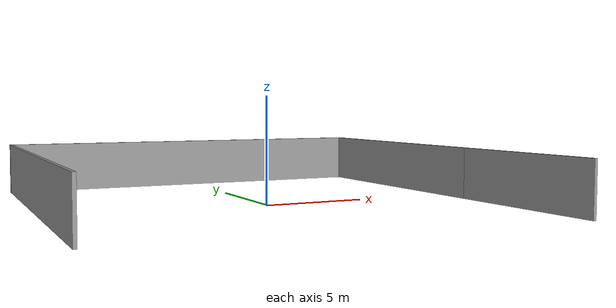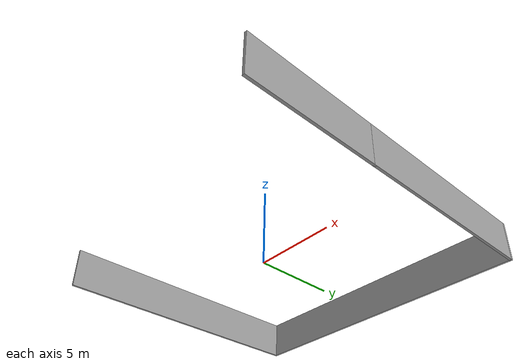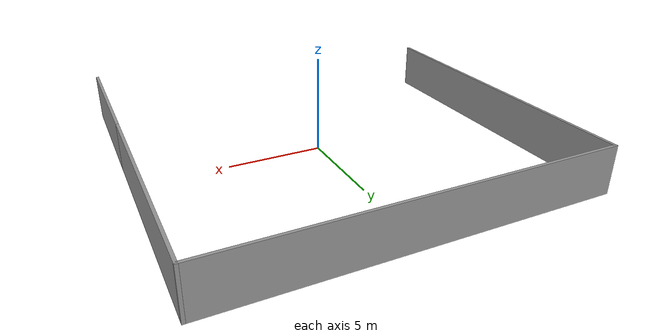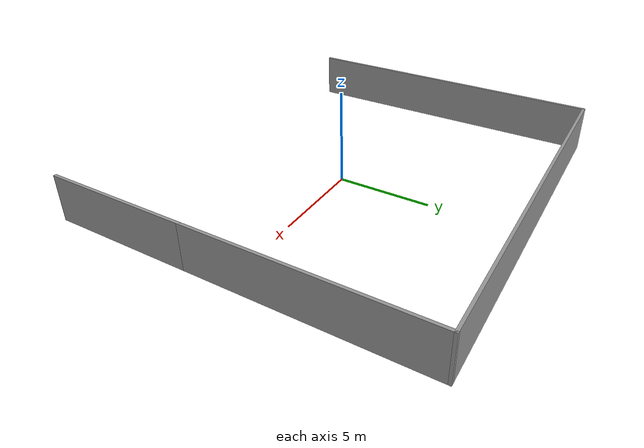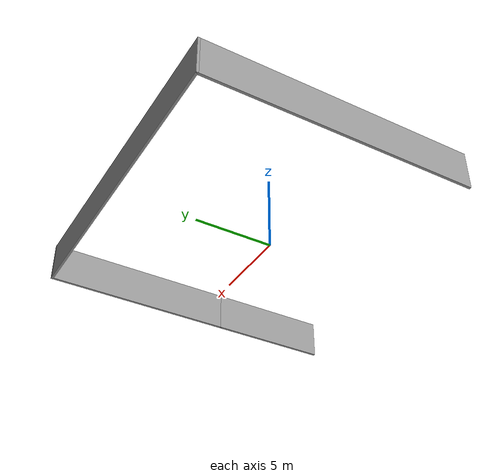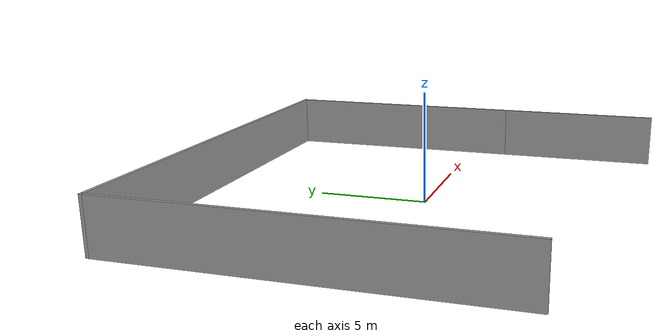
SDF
<?xml version='1.0'?>
<sdf version='1.7'>
  <model name='Savety_WALL'>
    <pose>-0.081627 0.251598 0 0 -0 0</pose>
    <link name='Wall_10'>
      <collision name='Wall_10_Collision'>
        <geometry>
          <box>
            <size>7.75 0.15 2.5</size>
          </box>
        </geometry>
        <pose>0 0 1.25 0 -0 0</pose>
      </collision>
      <visual name='Wall_10_Visual'>
        <pose>0 0 1.25 0 -0 0</pose>
        <geometry>
          <box>
            <size>7.75 0.15 2.5</size>
          </box>
        </geometry>
        <material>
          <script>
            <uri>file://media/materials/scripts/gazebo.material</uri>
            <name>Gazebo/Grey</name>
          </script>
          <ambient>1 1 1 1</ambient>
        </material>
        <meta>
          <layer>0</layer>
        </meta>
      </visual>
      <pose>9.925 -6.05 0 0 -0 -1.5708</pose>
    </link>
    <link name='Wall_4'>
      <collision name='Wall_4_Collision'>
        <geometry>
          <box>
            <size>12.25 0.15 2.5</size>
          </box>
        </geometry>
        <pose>0 0 1.25 0 -0 0</pose>
      </collision>
      <visual name='Wall_4_Visual'>
        <pose>0 0 1.25 0 -0 0</pose>
        <geometry>
          <box>
            <size>12.25 0.15 2.5</size>
          </box>
        </geometry>
        <material>
          <script>
            <uri>file://media/materials/scripts/gazebo.material</uri>
            <name>Gazebo/Grey</name>
          </script>
          <ambient>1 1 1 1</ambient>
        </material>
        <meta>
          <layer>0</layer>
        </meta>
      </visual>
      <pose>9.925 3.8 0 0 -0 1.5708</pose>
    </link>
    <link name='Wall_5'>
      <collision name='Wall_5_Collision'>
        <geometry>
          <box>
            <size>20 0.15 2.5</size>
          </box>
        </geometry>
        <pose>0 0 1.25 0 -0 0</pose>
      </collision>
      <visual name='Wall_5_Visual'>
        <pose>0 0 1.25 0 -0 0</pose>
        <geometry>
          <box>
            <size>20 0.15 2.5</size>
          </box>
        </geometry>
        <material>
          <script>
            <uri>file://media/materials/scripts/gazebo.material</uri>
            <name>Gazebo/Grey</name>
          </script>
          <ambient>1 1 1 1</ambient>
        </material>
        <meta>
          <layer>0</layer>
        </meta>
      </visual>
      <pose>0 9.85 0 0 -0 3.14159</pose>
    </link>
    <link name='Wall_6'>
      <collision name='Wall_6_Collision'>
        <geometry>
          <box>
            <size>17 0.15 2.5</size>
          </box>
        </geometry>
        <pose>0 0 1.25 0 -0 0</pose>
      </collision>
      <visual name='Wall_6_Visual'>
        <pose>0 0 1.25 0 -0 0</pose>
        <geometry>
          <box>
            <size>17 0.15 2.5</size>
          </box>
        </geometry>
        <material>
          <script>
            <uri>file://media/materials/scripts/gazebo.material</uri>
            <name>Gazebo/Grey</name>
          </script>
          <ambient>1 1 1 1</ambient>
        </material>
        <meta>
          <layer>0</layer>
        </meta>
      </visual>
      <pose>-9.925 1.425 0 0 -0 -1.5708</pose>
    </link>
    <static>1</static>
  </model>
</sdf>
